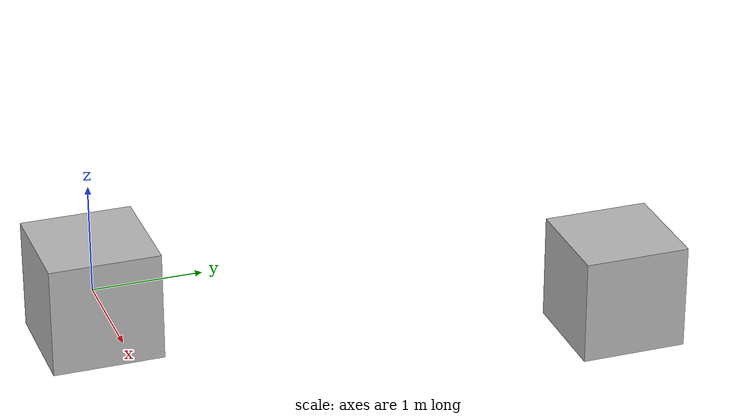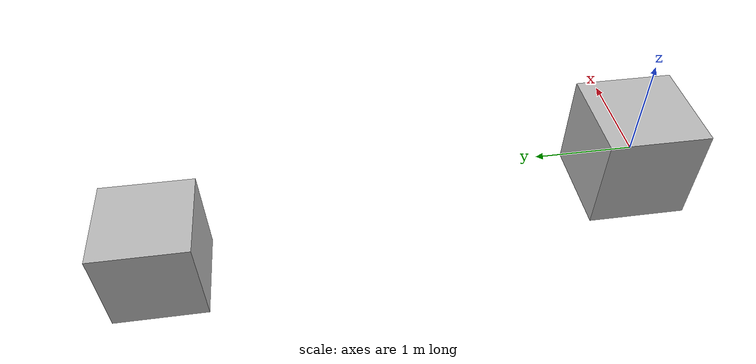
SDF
<?xml version="1.0" ?>
<sdf version="1.6">
  <world name="buoyant_tethys">
    <plugin
      filename="gz-sim-apply-link-wrench-system"
      name="gz::sim::systems::ApplyLinkWrench">
    </plugin>

    <scene>
      <!-- For turquoise ambient -->
      <ambient>0.0 1.0 1.0</ambient>
      <background>0.0 0.7 0.8</background>
    </scene>

    <physics name="1ms" type="ode">
      <max_step_size>0.001</max_step_size>
      <real_time_factor>1.0</real_time_factor>
    </physics>
    <plugin
      filename="gz-sim-physics-system"
      name="gz::sim::systems::Physics">
    </plugin>
    <plugin
      filename="gz-sim-user-commands-system"
      name="gz::sim::systems::UserCommands">
    </plugin>
    <plugin
      filename="gz-sim-scene-broadcaster-system"
      name="gz::sim::systems::SceneBroadcaster">
    </plugin>
    <plugin
      filename="gz-sim-contact-system"
      name="gz::sim::systems::Contact">
    </plugin>

    <plugin
      filename="gz-sim-buoyancy-system"
      name="gz::sim::systems::Buoyancy">
      <uniform_fluid_density>1000</uniform_fluid_density>
    </plugin>

    <light type="directional" name="sun">
      <cast_shadows>true</cast_shadows>
      <pose>0 0 10 0 0 0</pose>
      <diffuse>1 1 1 1</diffuse>
      <specular>0.5 0.5 0.5 1</specular>
      <attenuation>
        <range>1000</range>
        <constant>0.9</constant>
        <linear>0.01</linear>
        <quadratic>0.001</quadratic>
      </attenuation>
      <direction>-0.5 0.1 -0.9</direction>
    </light>

    <model name="buoyant_box">
      <pose>0 0 0 0 0 0</pose>
      <link name='body'>
        <inertial>
          <mass>1000</mass>
          <inertia>
            <ixx>133.3333</ixx>
            <iyy>133.3333</iyy>
            <izz>133.3333</izz>
          </inertia>
        </inertial>
        <visual name='body_visual'>
          <geometry>
            <box>
              <size>1 1 1</size>
            </box>
          </geometry>
        </visual>
        <collision name='body_collision'>
          <geometry>
            <box>
              <size>1 1 1</size>
            </box>
          </geometry>
        </collision>
      </link>
      <plugin
        filename="gz-sim-buoyancy-engine-system"
        name="gz::sim::systems::BuoyancyEngine">
        <link_name>body</link_name>
        <namespace>buoyant_box</namespace>
        <min_volume>0.0</min_volume>
        <neutral_volume>0.002</neutral_volume>
        <default_volume>0.002</default_volume>
        <max_volume>0.003</max_volume>
        <max_inflation_rate>0.0003</max_inflation_rate>
      </plugin>
    </model>

    <model name="buoyant_box_surface">
      <pose>0 5 -0.8 0 0 0</pose>
      <link name='body'>
        <inertial>
          <mass>1000</mass>
          <inertia>
            <ixx>133.3333</ixx>
            <iyy>133.3333</iyy>
            <izz>133.3333</izz>
          </inertia>
        </inertial>
        <visual name='body_visual'>
          <geometry>
            <box>
              <size>1 1 1</size>
            </box>
          </geometry>
        </visual>
        <collision name='body_collision'>
          <geometry>
            <box>
              <size>1 1 1</size>
            </box>
          </geometry>
        </collision>
      </link>
      <plugin
        filename="gz-sim-buoyancy-engine-system"
        name="gz::sim::systems::BuoyancyEngine">
        <link_name>body</link_name>
        <namespace>buoyant_box</namespace>
        <min_volume>0.0</min_volume>
        <neutral_volume>0.002</neutral_volume>
        <default_volume>0.002</default_volume>
        <max_volume>0.003</max_volume>
        <max_inflation_rate>0.0003</max_inflation_rate>
        <surface>0</surface>
      </plugin>
    </model>
  </world>
</sdf>
